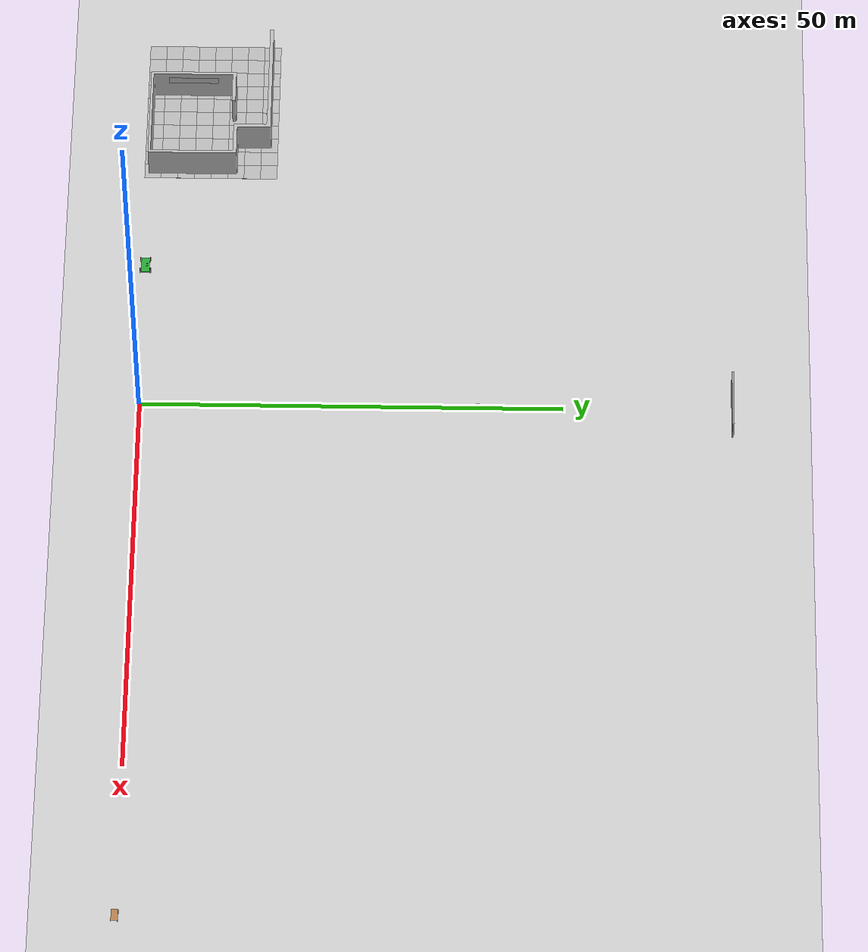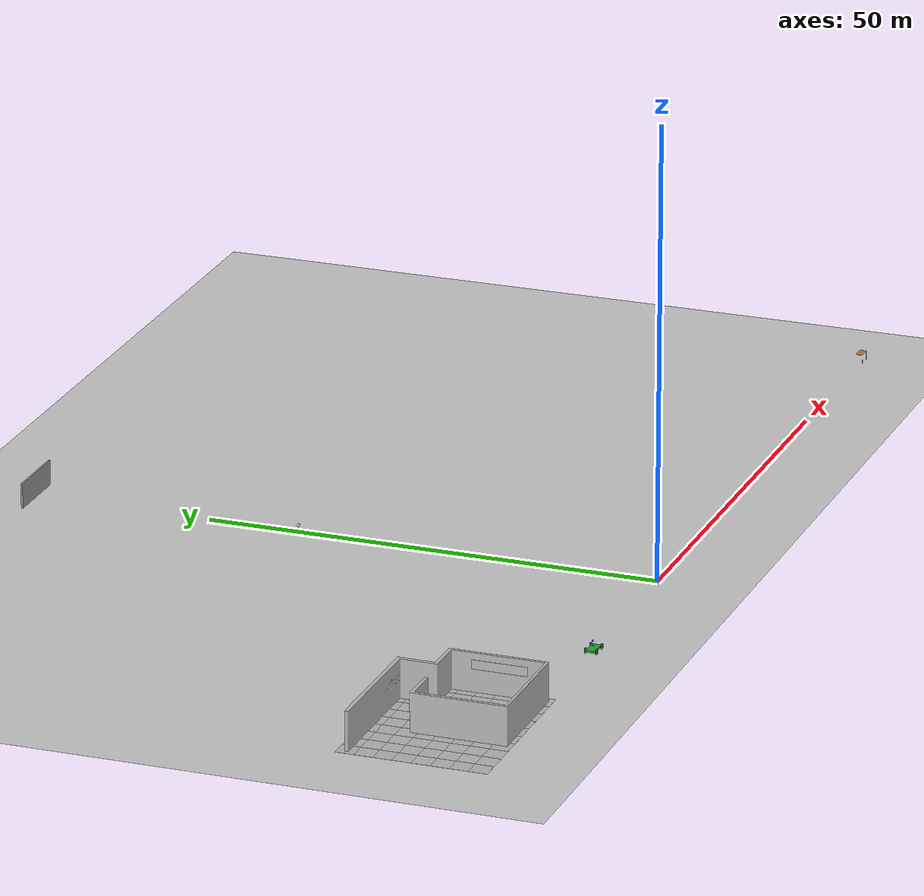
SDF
<sdf version="1.5">
 <world name="default">
  <include><uri>model://sun</uri></include>
  <include><uri>model://ground_plane</uri></include>
  <include><uri>model://table</uri><pose>70 0 0 0 0 0</pose></include>
  <include><uri>model://utility_cart</uri><pose>-20 0 0 0 0 0</pose></include>
  <include><uri>model://starting_pen</uri><pose>-40 0 0 0 0 0</pose></include>
  <include><uri>model://mailbox</uri><pose>0 40 0 0 0 0</pose></include>
  <include><uri>model://grey_wall</uri><pose>0 70 0 0 0 0</pose></include>
 </world>
</sdf>

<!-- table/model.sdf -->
<sdf version="1.5">
  <model name="table">
    <static>true</static>
    <link name="link">
      <collision name="surface">
        <pose>0 0 1.0 0 0 0</pose>
        <geometry>
          <box>
            <size>1.5 0.8 0.03</size>
          </box>
        </geometry>
        <surface>
          <friction>
            <ode>
              <mu>0.6</mu>
              <mu2>0.6</mu2>
            </ode>
          </friction>
        </surface>
      </collision>
      <visual name="visual1">
        <pose>0 0 1.0 0 0 0</pose>
        <geometry>
          <box>
            <size>1.5 0.8 0.03</size>
          </box>
        </geometry>
        <material>
          <script>
            <uri>model://media/materials/scripts/gazebo.material</uri>
            <name>Gazebo/Wood</name>
          </script>
        </material>
      </visual>
      <collision name="front_left_leg">
        <pose>0.68 0.38 0.5 0 0 0</pose>
        <geometry>
          <cylinder>
            <radius>0.02</radius>
            <length>1.0</length>
          </cylinder>
        </geometry>
      </collision>
      <visual name="front_left_leg">
        <pose>0.68 0.38 0.5 0 0 0</pose>
        <geometry>
          <cylinder>
            <radius>0.02</radius>
            <length>1.0</length>
          </cylinder>
        </geometry>
        <material>
          <script>
            <uri>model://media/materials/scripts/gazebo.material</uri>
            <name>Gazebo/Grey</name>
          </script>
        </material>
      </visual>
      <collision name="front_right_leg">
        <pose>0.68 -0.38 0.5 0 0 0</pose>
        <geometry>
          <cylinder>
            <radius>0.02</radius>
            <length>1.0</length>
          </cylinder>
        </geometry>
      </collision>
      <visual name="front_right_leg">
        <pose>0.68 -0.38 0.5 0 0 0</pose>
        <geometry>
          <cylinder>
            <radius>0.02</radius>
            <length>1.0</length>
          </cylinder>
        </geometry>
        <material>
          <script>
            <uri>model://media/materials/scripts/gazebo.material</uri>
            <name>Gazebo/Grey</name>
          </script>
        </material>
      </visual>
      <collision name="back_right_leg">
        <pose>-0.68 -0.38 0.5 0 0 0</pose>
        <geometry>
          <cylinder>
            <radius>0.02</radius>
            <length>1.0</length>
          </cylinder>
        </geometry>
      </collision>
      <visual name="back_right_leg">
        <pose>-0.68 -0.38 0.5 0 0 0</pose>
        <geometry>
          <cylinder>
            <radius>0.02</radius>
            <length>1.0</length>
          </cylinder>
        </geometry>
        <material>
          <script>
            <uri>model://media/materials/scripts/gazebo.material</uri>
            <name>Gazebo/Grey</name>
          </script>
        </material>
      </visual>
      <collision name="back_left_leg">
        <pose>-0.68 0.38 0.5 0 0 0</pose>
        <geometry>
          <cylinder>
            <radius>0.02</radius>
            <length>1.0</length>
          </cylinder>
        </geometry>
      </collision>
      <visual name="back_left_leg">
        <pose>-0.68 0.38 0.5 0 0 0</pose>
        <geometry>
          <cylinder>
            <radius>0.02</radius>
            <length>1.0</length>
          </cylinder>
        </geometry>
        <material>
          <script>
            <uri>model://media/materials/scripts/gazebo.material</uri>
            <name>Gazebo/Grey</name>
          </script>
        </material>
      </visual>
    </link>
  </model>
</sdf>

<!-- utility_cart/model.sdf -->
<sdf version="1.5">
  <model name="utility_cart">
    <link name="chassis">
      <pose>0 0 0.3 0 0 0</pose>
      <collision name="collision">
        <geometry>
          <box>
            <size>2.0 1.0 0.2</size>
          </box>
        </geometry>
      </collision>
      <visual name="visual">
        <geometry>
          <box>
            <size>2.0 1.0 0.2</size>
          </box>
        </geometry>
        <material>
          <script>
            <uri>file://media/materials/scripts/gazebo.material</uri>
            <name>Gazebo/Green</name>
          </script>
        </material>
      </visual>
    </link>
    <link name="front_left_wheel">
      <pose>0.8 0.6 0.3 0 1.5707 1.5707</pose>
      <collision name="collision">
        <geometry>
          <cylinder>
            <radius>0.3</radius>
            <length>0.1</length>
          </cylinder>
        </geometry>
      </collision>
      <visual name="visual">
        <geometry>
          <cylinder>
            <radius>0.3</radius>
            <length>0.1</length>
          </cylinder>
        </geometry>
        <material>
          <script>
            <uri>file://media/materials/scripts/gazebo.material</uri>
            <name>Gazebo/Black</name>
          </script>
        </material>
      </visual>
    </link>
    <link name="front_right_wheel">
      <pose>0.8 -0.6 0.3 0 1.5707 1.5707</pose>
      <collision name="collision">
        <geometry>
          <cylinder>
            <radius>0.3</radius>
            <length>0.1</length>
          </cylinder>
        </geometry>
      </collision>
      <visual name="visual">
        <geometry>
          <cylinder>
            <radius>0.3</radius>
            <length>0.1</length>
          </cylinder>
        </geometry>
        <material>
          <script>
            <uri>file://media/materials/scripts/gazebo.material</uri>
            <name>Gazebo/Black</name>
          </script>
        </material>
      </visual>
    </link>
    <link name="back_right_wheel">
      <pose>-0.8 -0.6 0.3 0 1.5707 1.5707</pose>
      <collision name="collision">
        <geometry>
          <cylinder>
            <radius>0.3</radius>
            <length>0.1</length>
          </cylinder>
        </geometry>
      </collision>
      <visual name="visual">
        <geometry>
          <cylinder>
            <radius>0.3</radius>
            <length>0.1</length>
          </cylinder>
        </geometry>
        <material>
          <script>
            <uri>file://media/materials/scripts/gazebo.material</uri>
            <name>Gazebo/Black</name>
          </script>
        </material>
      </visual>
    </link>
    <link name="back_left_wheel">
      <pose>-0.8 0.6 0.3 0 1.5707 1.5707</pose>
      <collision name="collision">
        <geometry>
          <cylinder>
            <radius>0.3</radius>
            <length>0.1</length>
          </cylinder>
        </geometry>
      </collision>
      <visual name="visual">
        <geometry>
          <cylinder>
            <radius>0.3</radius>
            <length>0.1</length>
          </cylinder>
        </geometry>
        <material>
          <script>
            <uri>file://media/materials/scripts/gazebo.material</uri>
            <name>Gazebo/Black</name>
          </script>
        </material>
      </visual>
    </link>
    <link name="gas_pedal">
      <pose>0.3 0.1 0.5 0 0 0</pose>
      <collision name="collision">
        <geometry>
          <box>
            <size>0.1 0.1 0.1</size>
          </box>
        </geometry>
      </collision>
      <visual name="visual">
        <geometry>
          <box>
            <size>0.1 0.1 0.1</size>
          </box>
        </geometry>
        <material>
          <script>
            <uri>file://media/materials/scripts/gazebo.material</uri>
            <name>Gazebo/Red</name>
          </script>
        </material>
      </visual>
    </link>
    <link name="brake_pedal">
      <pose>0.3 0.25 0.5 0 0 0</pose>
      <collision name="collision">
        <geometry>
          <box>
            <size>0.1 0.1 0.1</size>
          </box>
        </geometry>
      </collision>
      <visual name="visual">
        <geometry>
          <box>
            <size>0.1 0.1 0.1</size>
          </box>
        </geometry>
        <material>
          <script>
            <uri>file://media/materials/scripts/gazebo.material</uri>
            <name>Gazebo/Blue</name>
          </script>
        </material>
      </visual>
    </link>
    <link name="steering_wheel">
      <pose>0.3 0.2 1.0 0 1.5707 0</pose>
      <collision name="collision">
        <geometry>
          <cylinder>
            <radius>0.1</radius>
            <length>0.01</length>
          </cylinder>
        </geometry>
      </collision>
      <visual name="visual">
        <geometry>
          <cylinder>
            <radius>0.1</radius>
            <length>0.01</length>
          </cylinder>
        </geometry>
        <material>
          <script>
            <uri>file://media/materials/scripts/gazebo.material</uri>
            <name>Gazebo/Blue</name>
          </script>
        </material>
      </visual>
    </link>
    <joint type="prismatic" name="gas_joint">
      <parent>chassis</parent>
      <child>gas_pedal</child>
      <axis>
        <xyz>1 0 0</xyz>
        <limit>
          <lower>0</lower>
          <upper>0.2</upper>
        </limit>
        <use_parent_model_frame>true</use_parent_model_frame>
      </axis>
    </joint>
    <joint type="prismatic" name="brake_joint">
      <parent>chassis</parent>
      <child>brake_pedal</child>
      <axis>
        <xyz>1 0 0</xyz>
        <limit>
          <lower>0</lower>
          <upper>0.2</upper>
        </limit>
        <use_parent_model_frame>true</use_parent_model_frame>
      </axis>
    </joint>
    <joint type="revolute" name="steering_joint">
      <parent>chassis</parent>
      <child>steering_wheel</child>
      <axis>
        <xyz>1 0 0</xyz>
        <limit>
          <lower>-7.853</lower>
          <upper>7.853</upper>
        </limit>
        <use_parent_model_frame>true</use_parent_model_frame>
      </axis>
    </joint>
    <joint type="revolute2" name="front_left_joint">
      <parent>chassis</parent>
      <child>front_left_wheel</child>
      <axis>
        <xyz>0 0 1</xyz>
        <limit>
          <lower>0</lower>
          <upper>0</upper>
        </limit>
        <use_parent_model_frame>true</use_parent_model_frame>
      </axis>
      <axis2>
        <xyz>0 1 0</xyz>
        <use_parent_model_frame>true</use_parent_model_frame>
      </axis2>
      <physics>
        <ode>
          <limit>
            <cfm>0.0</cfm>
            <erp>0.9</erp>
          </limit>
        </ode>
      </physics>
    </joint>
    <joint type="revolute2" name="front_right_joint">
      <parent>chassis</parent>
      <child>front_right_wheel</child>
      <axis>
        <xyz>0 0 1</xyz>
        <limit>
          <lower>0</lower>
          <upper>0</upper>
        </limit>
        <use_parent_model_frame>true</use_parent_model_frame>
      </axis>
      <axis2>
        <xyz>0 1 0</xyz>
        <use_parent_model_frame>true</use_parent_model_frame>
      </axis2>
      <physics>
        <ode>
          <limit>
            <cfm>0.0</cfm>
            <erp>0.9</erp>
          </limit>
        </ode>
      </physics>
    </joint>
    <joint type="revolute2" name="back_right_joint">
      <parent>chassis</parent>
      <child>back_right_wheel</child>
      <axis>
        <xyz>0 0 1</xyz>
        <limit>
          <lower>0</lower>
          <upper>0</upper>
        </limit>
        <use_parent_model_frame>true</use_parent_model_frame>
      </axis>
      <axis2>
        <xyz>0 1 0</xyz>
        <use_parent_model_frame>true</use_parent_model_frame>
      </axis2>
      <physics>
        <ode>
          <limit>
            <cfm>0.0</cfm>
            <erp>0.9</erp>
          </limit>
        </ode>
      </physics>
    </joint>
    <joint type="revolute2" name="back_left_joint">
      <parent>chassis</parent>
      <child>back_left_wheel</child>
      <axis>
        <xyz>0 0 1</xyz>
        <limit>
          <lower>0</lower>
          <upper>0</upper>
        </limit>
        <use_parent_model_frame>true</use_parent_model_frame>
      </axis>
      <axis2>
        <xyz>0 1 0</xyz>
        <use_parent_model_frame>true</use_parent_model_frame>
      </axis2>
      <physics>
        <ode>
          <limit>
            <cfm>0.0</cfm>
            <erp>0.9</erp>
          </limit>
        </ode>
      </physics>
    </joint>
    <plugin filename="libVehiclePlugin.so" name="vehicle">
      <!-- Joints for each wheel -->
      <front_left>front_left_joint</front_left>
      <front_right>front_right_joint</front_right>
      <back_left>back_left_joint</back_left>
      <back_right>back_right_joint</back_right>
      <!-- Joint which controls the gas -->
      <gas>gas_joint</gas>
      <!-- Joint which controls the gas -->
      <brake>brake_joint</brake>
      <!-- Joint which controls the steering -->
      <steering>steering_joint</steering>
      <!-- Power is multiplied by "gas" to determine force applied to wheels -->
      <front_power>10</front_power>
      <rear_power>10</rear_power>
      <!-- The angle range the front tires can turn for steering, in radians -->
      <tire_angle_range>0.5</tire_angle_range>
      <!-- Maximum speed for the car in meters/second -->
      <max_speed>10</max_speed>
      <!-- Factor for the down-force applied as the car travels faster -->
      <!-- A larger number increases the down force -->
      <aero_load>0.1</aero_load>
    </plugin>
  </model>
</sdf>

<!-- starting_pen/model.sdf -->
<sdf version="1.5">
  <model name="starting_pen">
    <static>true</static>
    <link name="link">
      <collision name="wall_01">
        <pose>-0.0 0 2.14 0 0 0</pose>
        <geometry>
          <box>
            <size>12.15 0.31 4.28</size>
          </box>
        </geometry>
      </collision>
      <collision name="wall_02">
        <pose>-5.28 14.3205 2.14 0 0 0</pose>
        <geometry>
          <box>
            <size>14.8 0.46 4.28</size>
          </box>
        </geometry>
      </collision>
      <collision name="wall_03">
        <pose>-5.91 5.0 2.14 0 0 0</pose>
        <geometry>
          <box>
            <size>0.385 10.3 4.28</size>
          </box>
        </geometry>
      </collision>
      <collision name="wall_04">
        <pose>5.91 5.161 2.14 0 0 0</pose>
        <geometry>
          <box>
            <size>0.385 10.66 4.28</size>
          </box>
        </geometry>
      </collision>
      <collision name="wall_05">
        <pose>3.9 10.285 2.14 0 0 0</pose>
        <geometry>
          <box>
            <size>4.38 0.45 4.28</size>
          </box>
        </geometry>
      </collision>
      <collision name="wall_06">
        <pose>-4.0 9.95 2.14 0 0 0</pose>
        <geometry>
          <box>
            <size>4.25 0.45 4.28</size>
          </box>
        </geometry>
      </collision>
      <collision name="wall_07">
        <pose>1.94 12.3 2.14 0 0 0</pose>
        <geometry>
          <box>
            <size>0.45 4.5 4.28</size>
          </box>
        </geometry>
      </collision>
      <collision name="wall_arrow">
        <pose>-0.232 14.03 2.46 0 0 0</pose>
        <geometry>
          <box>
            <size>3.33 0.12 1.16</size>
          </box>
        </geometry>
      </collision>
      <collision name="collision_floor">
        <pose>-3.21 7.355 0 0 0 0</pose>
        <geometry>
          <box>
            <size>20 16 0.01</size>
          </box>
        </geometry>
        <surface>
          <friction>
            <ode>
              <mu>100</mu>
              <mu2>50</mu2>
            </ode>
          </friction>
        </surface>
      </collision>
      <visual name="visual_osrf">
        <pose>-5.74 4.99 3 0 0 0</pose>
        <geometry>
          <box>
            <size>0.01 6 1.0</size>
          </box>
        </geometry>
        <material>
          <script>
            <uri>model://starting_pen/materials/scripts</uri>
            <uri>model://starting_pen/materials/textures</uri>
            <name>StartingPen/OSRF</name>
          </script>
        </material>
      </visual>
      <visual name="visual_osrf_2">
        <pose>5.74 4.99 3 0 0 0</pose>
        <geometry>
          <box>
            <size>0.01 6 1.0</size>
          </box>
        </geometry>
        <material>
          <script>
            <uri>model://starting_pen/materials/scripts</uri>
            <uri>model://starting_pen/materials/textures</uri>
            <name>StartingPen/OSRF</name>
          </script>
        </material>
      </visual>
      <visual name="visual">
        <geometry>
          <mesh>
            <uri>model://starting_pen/meshes/starting_pen.dae</uri>
          </mesh>
        </geometry>
      </visual>
      <visual name="visual_floor_0">
        <pose>-12.21 0.35 0 0 0 0</pose>
        <geometry>
          <box>
            <size>2 2 0.01</size>
          </box>
        </geometry>
        <material>
          <script>
            <uri>model://starting_pen/materials/scripts</uri>
            <uri>model://starting_pen/materials/textures</uri>
            <name>StartingPen/Floor</name>
          </script>
        </material>
      </visual>
      <visual name="visual_floor_1">
        <pose>-10.21 0.35 0 0 0 0</pose>
        <geometry>
          <box>
            <size>2 2 0.01</size>
          </box>
        </geometry>
        <material>
          <script>
            <uri>model://starting_pen/materials/scripts</uri>
            <uri>model://starting_pen/materials/textures</uri>
            <name>StartingPen/Floor</name>
          </script>
        </material>
      </visual>
      <visual name="visual_floor_2">
        <pose>-8.21 0.35 0 0 0 0</pose>
        <geometry>
          <box>
            <size>2 2 0.01</size>
          </box>
        </geometry>
        <material>
          <script>
            <uri>model://starting_pen/materials/scripts</uri>
            <uri>model://starting_pen/materials/textures</uri>
            <name>StartingPen/Floor</name>
          </script>
        </material>
      </visual>
      <visual name="visual_floor_3">
        <pose>-6.21 0.35 0 0 0 0</pose>
        <geometry>
          <box>
            <size>2 2 0.01</size>
          </box>
        </geometry>
        <material>
          <script>
            <uri>model://starting_pen/materials/scripts</uri>
            <uri>model://starting_pen/materials/textures</uri>
            <name>StartingPen/Floor</name>
          </script>
        </material>
      </visual>
      <visual name="visual_floor_4">
        <pose>-4.21 0.35 0 0 0 0</pose>
        <geometry>
          <box>
            <size>2 2 0.01</size>
          </box>
        </geometry>
        <material>
          <script>
            <uri>model://starting_pen/materials/scripts</uri>
            <uri>model://starting_pen/materials/textures</uri>
            <name>StartingPen/Floor</name>
          </script>
        </material>
      </visual>
      <visual name="visual_floor_5">
        <pose>-2.21 0.35 0 0 0 0</pose>
        <geometry>
          <box>
            <size>2 2 0.01</size>
          </box>
        </geometry>
        <material>
          <script>
            <uri>model://starting_pen/materials/scripts</uri>
            <uri>model://starting_pen/materials/textures</uri>
            <name>StartingPen/Floor</name>
          </script>
        </material>
      </visual>
      <visual name="visual_floor_6">
        <pose>-0.21 0.35 0 0 0 0</pose>
        <geometry>
          <box>
            <size>2 2 0.01</size>
          </box>
        </geometry>
        <material>
          <script>
            <uri>model://starting_pen/materials/scripts</uri>
            <uri>model://starting_pen/materials/textures</uri>
            <name>StartingPen/Floor</name>
          </script>
        </material>
      </visual>
      <visual name="visual_floor_7">
        <pose>1.79 0.35 0 0 0 1.5707</pose>
        <geometry>
          <box>
            <size>2 2 0.01</size>
          </box>
        </geometry>
        <material>
          <script>
            <uri>model://starting_pen/materials/scripts</uri>
            <uri>model://starting_pen/materials/textures</uri>
            <name>StartingPen/FloorStripped</name>
          </script>
        </material>
      </visual>
      <visual name="visual_floor_8">
        <pose>3.79 0.35 0 0 0 0</pose>
        <geometry>
          <box>
            <size>2 2 0.01</size>
          </box>
        </geometry>
        <material>
          <script>
            <uri>model://starting_pen/materials/scripts</uri>
            <uri>model://starting_pen/materials/textures</uri>
            <name>StartingPen/Floor</name>
          </script>
        </material>
      </visual>
      <visual name="visual_floor_9">
        <pose>5.79 0.35 0 0 0 0</pose>
        <geometry>
          <box>
            <size>2 2 0.01</size>
          </box>
        </geometry>
        <material>
          <script>
            <uri>model://starting_pen/materials/scripts</uri>
            <uri>model://starting_pen/materials/textures</uri>
            <name>StartingPen/Floor</name>
          </script>
        </material>
      </visual>
      <visual name="visual_floor_10">
        <pose>-12.21 2.35 0 0 0 1.5707</pose>
        <geometry>
          <box>
            <size>2 2 0.01</size>
          </box>
        </geometry>
        <material>
          <script>
            <uri>model://starting_pen/materials/scripts</uri>
            <uri>model://starting_pen/materials/textures</uri>
            <name>StartingPen/FloorStripped</name>
          </script>
        </material>
      </visual>
      <visual name="visual_floor_11">
        <pose>-10.21 2.35 0 0 0 0</pose>
        <geometry>
          <box>
            <size>2 2 0.01</size>
          </box>
        </geometry>
        <material>
          <script>
            <uri>model://starting_pen/materials/scripts</uri>
            <uri>model://starting_pen/materials/textures</uri>
            <name>StartingPen/Floor</name>
          </script>
        </material>
      </visual>
      <visual name="visual_floor_12">
        <pose>-8.21 2.35 0 0 0 0</pose>
        <geometry>
          <box>
            <size>2 2 0.01</size>
          </box>
        </geometry>
        <material>
          <script>
            <uri>model://starting_pen/materials/scripts</uri>
            <uri>model://starting_pen/materials/textures</uri>
            <name>StartingPen/Floor</name>
          </script>
        </material>
      </visual>
      <visual name="visual_floor_13">
        <pose>-6.21 2.35 0 0 0 0</pose>
        <geometry>
          <box>
            <size>2 2 0.01</size>
          </box>
        </geometry>
        <material>
          <script>
            <uri>model://starting_pen/materials/scripts</uri>
            <uri>model://starting_pen/materials/textures</uri>
            <name>StartingPen/Floor</name>
          </script>
        </material>
      </visual>
      <visual name="visual_floor_14">
        <pose>-4.21 2.35 0 0 0 0</pose>
        <geometry>
          <box>
            <size>2 2 0.01</size>
          </box>
        </geometry>
        <material>
          <script>
            <uri>model://starting_pen/materials/scripts</uri>
            <uri>model://starting_pen/materials/textures</uri>
            <name>StartingPen/Floor</name>
          </script>
        </material>
      </visual>
      <visual name="visual_floor_15">
        <pose>-2.21 2.35 0 0 0 0</pose>
        <geometry>
          <box>
            <size>2 2 0.01</size>
          </box>
        </geometry>
        <material>
          <script>
            <uri>model://starting_pen/materials/scripts</uri>
            <uri>model://starting_pen/materials/textures</uri>
            <name>StartingPen/Floor</name>
          </script>
        </material>
      </visual>
      <visual name="visual_floor_16">
        <pose>-0.21 2.35 0 0 0 1.5707</pose>
        <geometry>
          <box>
            <size>2 2 0.01</size>
          </box>
        </geometry>
        <material>
          <script>
            <uri>model://starting_pen/materials/scripts</uri>
            <uri>model://starting_pen/materials/textures</uri>
            <name>StartingPen/FloorStripped</name>
          </script>
        </material>
      </visual>
      <visual name="visual_floor_17">
        <pose>1.79 2.35 0 0 0 1.5707</pose>
        <geometry>
          <box>
            <size>2 2 0.01</size>
          </box>
        </geometry>
        <material>
          <script>
            <uri>model://starting_pen/materials/scripts</uri>
            <uri>model://starting_pen/materials/textures</uri>
            <name>StartingPen/Floor</name>
          </script>
        </material>
      </visual>
      <visual name="visual_floor_18">
        <pose>3.79 2.35 0 0 0 0</pose>
        <geometry>
          <box>
            <size>2 2 0.01</size>
          </box>
        </geometry>
        <material>
          <script>
            <uri>model://starting_pen/materials/scripts</uri>
            <uri>model://starting_pen/materials/textures</uri>
            <name>StartingPen/Floor</name>
          </script>
        </material>
      </visual>
      <visual name="visual_floor_19">
        <pose>5.79 2.35 0 0 0 0</pose>
        <geometry>
          <box>
            <size>2 2 0.01</size>
          </box>
        </geometry>
        <material>
          <script>
            <uri>model://starting_pen/materials/scripts</uri>
            <uri>model://starting_pen/materials/textures</uri>
            <name>StartingPen/Floor</name>
          </script>
        </material>
      </visual>
      <visual name="visual_floor_20">
        <pose>-12.21 4.35 0 0 0 0</pose>
        <geometry>
          <box>
            <size>2 2 0.01</size>
          </box>
        </geometry>
        <material>
          <script>
            <uri>model://starting_pen/materials/scripts</uri>
            <uri>model://starting_pen/materials/textures</uri>
            <name>StartingPen/Floor</name>
          </script>
        </material>
      </visual>
      <visual name="visual_floor_21">
        <pose>-10.21 4.35 0 0 0 0</pose>
        <geometry>
          <box>
            <size>2 2 0.01</size>
          </box>
        </geometry>
        <material>
          <script>
            <uri>model://starting_pen/materials/scripts</uri>
            <uri>model://starting_pen/materials/textures</uri>
            <name>StartingPen/Floor</name>
          </script>
        </material>
      </visual>
      <visual name="visual_floor_22">
        <pose>-8.21 4.35 0 0 0 1.5707</pose>
        <geometry>
          <box>
            <size>2 2 0.01</size>
          </box>
        </geometry>
        <material>
          <script>
            <uri>model://starting_pen/materials/scripts</uri>
            <uri>model://starting_pen/materials/textures</uri>
            <name>StartingPen/FloorStripped</name>
          </script>
        </material>
      </visual>
      <visual name="visual_floor_23">
        <pose>-6.21 4.35 0 0 0 0</pose>
        <geometry>
          <box>
            <size>2 2 0.01</size>
          </box>
        </geometry>
        <material>
          <script>
            <uri>model://starting_pen/materials/scripts</uri>
            <uri>model://starting_pen/materials/textures</uri>
            <name>StartingPen/Floor</name>
          </script>
        </material>
      </visual>
      <visual name="visual_floor_24">
        <pose>-4.21 4.35 0 0 0 0</pose>
        <geometry>
          <box>
            <size>2 2 0.01</size>
          </box>
        </geometry>
        <material>
          <script>
            <uri>model://starting_pen/materials/scripts</uri>
            <uri>model://starting_pen/materials/textures</uri>
            <name>StartingPen/Floor</name>
          </script>
        </material>
      </visual>
      <visual name="visual_floor_25">
        <pose>-2.21 4.35 0 0 0 0</pose>
        <geometry>
          <box>
            <size>2 2 0.01</size>
          </box>
        </geometry>
        <material>
          <script>
            <uri>model://starting_pen/materials/scripts</uri>
            <uri>model://starting_pen/materials/textures</uri>
            <name>StartingPen/Floor</name>
          </script>
        </material>
      </visual>
      <visual name="visual_floor_26">
        <pose>-0.21 4.35 0 0 0 0</pose>
        <geometry>
          <box>
            <size>2 2 0.01</size>
          </box>
        </geometry>
        <material>
          <script>
            <uri>model://starting_pen/materials/scripts</uri>
            <uri>model://starting_pen/materials/textures</uri>
            <name>StartingPen/Floor</name>
          </script>
        </material>
      </visual>
      <visual name="visual_floor_27">
        <pose>1.79 4.35 0 0 0 0</pose>
        <geometry>
          <box>
            <size>2 2 0.01</size>
          </box>
        </geometry>
        <material>
          <script>
            <uri>model://starting_pen/materials/scripts</uri>
            <uri>model://starting_pen/materials/textures</uri>
            <name>StartingPen/Floor</name>
          </script>
        </material>
      </visual>
      <visual name="visual_floor_28">
        <pose>3.79 4.35 0 0 0 0</pose>
        <geometry>
          <box>
            <size>2 2 0.01</size>
          </box>
        </geometry>
        <material>
          <script>
            <uri>model://starting_pen/materials/scripts</uri>
            <uri>model://starting_pen/materials/textures</uri>
            <name>StartingPen/Floor</name>
          </script>
        </material>
      </visual>
      <visual name="visual_floor_29">
        <pose>5.79 4.35 0 0 0 1.5707</pose>
        <geometry>
          <box>
            <size>2 2 0.01</size>
          </box>
        </geometry>
        <material>
          <script>
            <uri>model://starting_pen/materials/scripts</uri>
            <uri>model://starting_pen/materials/textures</uri>
            <name>StartingPen/FloorStripped</name>
          </script>
        </material>
      </visual>
      <visual name="visual_floor_30">
        <pose>-12.21 6.35 0 0 0 0</pose>
        <geometry>
          <box>
            <size>2 2 0.01</size>
          </box>
        </geometry>
        <material>
          <script>
            <uri>model://starting_pen/materials/scripts</uri>
            <uri>model://starting_pen/materials/textures</uri>
            <name>StartingPen/Floor</name>
          </script>
        </material>
      </visual>
      <visual name="visual_floor_31">
        <pose>-10.21 6.35 0 0 0 0</pose>
        <geometry>
          <box>
            <size>2 2 0.01</size>
          </box>
        </geometry>
        <material>
          <script>
            <uri>model://starting_pen/materials/scripts</uri>
            <uri>model://starting_pen/materials/textures</uri>
            <name>StartingPen/Floor</name>
          </script>
        </material>
      </visual>
      <visual name="visual_floor_32">
        <pose>-8.21 6.35 0 0 0 0</pose>
        <geometry>
          <box>
            <size>2 2 0.01</size>
          </box>
        </geometry>
        <material>
          <script>
            <uri>model://starting_pen/materials/scripts</uri>
            <uri>model://starting_pen/materials/textures</uri>
            <name>StartingPen/Floor</name>
          </script>
        </material>
      </visual>
      <visual name="visual_floor_33">
        <pose>-6.21 6.35 0 0 0 1.5707</pose>
        <geometry>
          <box>
            <size>2 2 0.01</size>
          </box>
        </geometry>
        <material>
          <script>
            <uri>model://starting_pen/materials/scripts</uri>
            <uri>model://starting_pen/materials/textures</uri>
            <name>StartingPen/FloorStripped</name>
          </script>
        </material>
      </visual>
      <visual name="visual_floor_34">
        <pose>-4.21 6.35 0 0 0 0</pose>
        <geometry>
          <box>
            <size>2 2 0.01</size>
          </box>
        </geometry>
        <material>
          <script>
            <uri>model://starting_pen/materials/scripts</uri>
            <uri>model://starting_pen/materials/textures</uri>
            <name>StartingPen/Floor</name>
          </script>
        </material>
      </visual>
      <visual name="visual_floor_35">
        <pose>-2.21 6.35 0 0 0 1.5707</pose>
        <geometry>
          <box>
            <size>2 2 0.01</size>
          </box>
        </geometry>
        <material>
          <script>
            <uri>model://starting_pen/materials/scripts</uri>
            <uri>model://starting_pen/materials/textures</uri>
            <name>StartingPen/FloorStripped</name>
          </script>
        </material>
      </visual>
      <visual name="visual_floor_36">
        <pose>-0.21 6.35 0 0 0 0</pose>
        <geometry>
          <box>
            <size>2 2 0.01</size>
          </box>
        </geometry>
        <material>
          <script>
            <uri>model://starting_pen/materials/scripts</uri>
            <uri>model://starting_pen/materials/textures</uri>
            <name>StartingPen/Floor</name>
          </script>
        </material>
      </visual>
      <visual name="visual_floor_37">
        <pose>1.79 6.35 0 0 0 0</pose>
        <geometry>
          <box>
            <size>2 2 0.01</size>
          </box>
        </geometry>
        <material>
          <script>
            <uri>model://starting_pen/materials/scripts</uri>
            <uri>model://starting_pen/materials/textures</uri>
            <name>StartingPen/Floor</name>
          </script>
        </material>
      </visual>
      <visual name="visual_floor_38">
        <pose>3.79 6.35 0 0 0 0</pose>
        <geometry>
          <box>
            <size>2 2 0.01</size>
          </box>
        </geometry>
        <material>
          <script>
            <uri>model://starting_pen/materials/scripts</uri>
            <uri>model://starting_pen/materials/textures</uri>
            <name>StartingPen/Floor</name>
          </script>
        </material>
      </visual>
      <visual name="visual_floor_39">
        <pose>5.79 6.35 0 0 0 0</pose>
        <geometry>
          <box>
            <size>2 2 0.01</size>
          </box>
        </geometry>
        <material>
          <script>
            <uri>model://starting_pen/materials/scripts</uri>
            <uri>model://starting_pen/materials/textures</uri>
            <name>StartingPen/Floor</name>
          </script>
        </material>
      </visual>
      <visual name="visual_floor_40">
        <pose>-12.21 8.35 0 0 0 0</pose>
        <geometry>
          <box>
            <size>2 2 0.01</size>
          </box>
        </geometry>
        <material>
          <script>
            <uri>model://starting_pen/materials/scripts</uri>
            <uri>model://starting_pen/materials/textures</uri>
            <name>StartingPen/Floor</name>
          </script>
        </material>
      </visual>
      <visual name="visual_floor_41">
        <pose>-10.21 8.35 0 0 0 0</pose>
        <geometry>
          <box>
            <size>2 2 0.01</size>
          </box>
        </geometry>
        <material>
          <script>
            <uri>model://starting_pen/materials/scripts</uri>
            <uri>model://starting_pen/materials/textures</uri>
            <name>StartingPen/Floor</name>
          </script>
        </material>
      </visual>
      <visual name="visual_floor_42">
        <pose>-8.21 8.35 0 0 0 1.5707</pose>
        <geometry>
          <box>
            <size>2 2 0.01</size>
          </box>
        </geometry>
        <material>
          <script>
            <uri>model://starting_pen/materials/scripts</uri>
            <uri>model://starting_pen/materials/textures</uri>
            <name>StartingPen/FloorStripped</name>
          </script>
        </material>
      </visual>
      <visual name="visual_floor_43">
        <pose>-6.21 8.35 0 0 0 0</pose>
        <geometry>
          <box>
            <size>2 2 0.01</size>
          </box>
        </geometry>
        <material>
          <script>
            <uri>model://starting_pen/materials/scripts</uri>
            <uri>model://starting_pen/materials/textures</uri>
            <name>StartingPen/Floor</name>
          </script>
        </material>
      </visual>
      <visual name="visual_floor_44">
        <pose>-4.21 8.35 0 0 0 0</pose>
        <geometry>
          <box>
            <size>2 2 0.01</size>
          </box>
        </geometry>
        <material>
          <script>
            <uri>model://starting_pen/materials/scripts</uri>
            <uri>model://starting_pen/materials/textures</uri>
            <name>StartingPen/Floor</name>
          </script>
        </material>
      </visual>
      <visual name="visual_floor_45">
        <pose>-2.21 8.35 0 0 0 0</pose>
        <geometry>
          <box>
            <size>2 2 0.01</size>
          </box>
        </geometry>
        <material>
          <script>
            <uri>model://starting_pen/materials/scripts</uri>
            <uri>model://starting_pen/materials/textures</uri>
            <name>StartingPen/Floor</name>
          </script>
        </material>
      </visual>
      <visual name="visual_floor_46">
        <pose>-0.21 8.35 0 0 0 1.5707</pose>
        <geometry>
          <box>
            <size>2 2 0.01</size>
          </box>
        </geometry>
        <material>
          <script>
            <uri>model://starting_pen/materials/scripts</uri>
            <uri>model://starting_pen/materials/textures</uri>
            <name>StartingPen/FloorStripped</name>
          </script>
        </material>
      </visual>
      <visual name="visual_floor_47">
        <pose>1.79 8.35 0 0 0 0</pose>
        <geometry>
          <box>
            <size>2 2 0.01</size>
          </box>
        </geometry>
        <material>
          <script>
            <uri>model://starting_pen/materials/scripts</uri>
            <uri>model://starting_pen/materials/textures</uri>
            <name>StartingPen/Floor</name>
          </script>
        </material>
      </visual>
      <visual name="visual_floor_48">
        <pose>3.79 8.35 0 0 0 0</pose>
        <geometry>
          <box>
            <size>2 2 0.01</size>
          </box>
        </geometry>
        <material>
          <script>
            <uri>model://starting_pen/materials/scripts</uri>
            <uri>model://starting_pen/materials/textures</uri>
            <name>StartingPen/Floor</name>
          </script>
        </material>
      </visual>
      <visual name="visual_floor_49">
        <pose>5.79 8.35 0 0 0 0</pose>
        <geometry>
          <box>
            <size>2 2 0.01</size>
          </box>
        </geometry>
        <material>
          <script>
            <uri>model://starting_pen/materials/scripts</uri>
            <uri>model://starting_pen/materials/textures</uri>
            <name>StartingPen/Floor</name>
          </script>
        </material>
      </visual>
      <visual name="visual_floor_50">
        <pose>-12.21 10.35 0 0 0 0</pose>
        <geometry>
          <box>
            <size>2 2 0.01</size>
          </box>
        </geometry>
        <material>
          <script>
            <uri>model://starting_pen/materials/scripts</uri>
            <uri>model://starting_pen/materials/textures</uri>
            <name>StartingPen/Floor</name>
          </script>
        </material>
      </visual>
      <visual name="visual_floor_51">
        <pose>-10.21 10.35 0 0 0 0</pose>
        <geometry>
          <box>
            <size>2 2 0.01</size>
          </box>
        </geometry>
        <material>
          <script>
            <uri>model://starting_pen/materials/scripts</uri>
            <uri>model://starting_pen/materials/textures</uri>
            <name>StartingPen/Floor</name>
          </script>
        </material>
      </visual>
      <visual name="visual_floor_52">
        <pose>-8.21 10.35 0 0 0 0</pose>
        <geometry>
          <box>
            <size>2 2 0.01</size>
          </box>
        </geometry>
        <material>
          <script>
            <uri>model://starting_pen/materials/scripts</uri>
            <uri>model://starting_pen/materials/textures</uri>
            <name>StartingPen/Floor</name>
          </script>
        </material>
      </visual>
      <visual name="visual_floor_53">
        <pose>-6.21 10.35 0 0 0 1.5707</pose>
        <geometry>
          <box>
            <size>2 2 0.01</size>
          </box>
        </geometry>
        <material>
          <script>
            <uri>model://starting_pen/materials/scripts</uri>
            <uri>model://starting_pen/materials/textures</uri>
            <name>StartingPen/FloorStripped</name>
          </script>
        </material>
      </visual>
      <visual name="visual_floor_54">
        <pose>-4.21 10.35 0 0 0 0</pose>
        <geometry>
          <box>
            <size>2 2 0.01</size>
          </box>
        </geometry>
        <material>
          <script>
            <uri>model://starting_pen/materials/scripts</uri>
            <uri>model://starting_pen/materials/textures</uri>
            <name>StartingPen/Floor</name>
          </script>
        </material>
      </visual>
      <visual name="visual_floor_55">
        <pose>-2.21 10.35 0 0 0 0</pose>
        <geometry>
          <box>
            <size>2 2 0.01</size>
          </box>
        </geometry>
        <material>
          <script>
            <uri>model://starting_pen/materials/scripts</uri>
            <uri>model://starting_pen/materials/textures</uri>
            <name>StartingPen/Floor</name>
          </script>
        </material>
      </visual>
      <visual name="visual_floor_56">
        <pose>-0.21 10.35 0 0 0 0</pose>
        <geometry>
          <box>
            <size>2 2 0.01</size>
          </box>
        </geometry>
        <material>
          <script>
            <uri>model://starting_pen/materials/scripts</uri>
            <uri>model://starting_pen/materials/textures</uri>
            <name>StartingPen/Floor</name>
          </script>
        </material>
      </visual>
      <visual name="visual_floor_57">
        <pose>1.79 10.35 0 0 0 0</pose>
        <geometry>
          <box>
            <size>2 2 0.01</size>
          </box>
        </geometry>
        <material>
          <script>
            <uri>model://starting_pen/materials/scripts</uri>
            <uri>model://starting_pen/materials/textures</uri>
            <name>StartingPen/Floor</name>
          </script>
        </material>
      </visual>
      <visual name="visual_floor_58">
        <pose>3.79 10.35 0 0 0 0</pose>
        <geometry>
          <box>
            <size>2 2 0.01</size>
          </box>
        </geometry>
        <material>
          <script>
            <uri>model://starting_pen/materials/scripts</uri>
            <uri>model://starting_pen/materials/textures</uri>
            <name>StartingPen/Floor</name>
          </script>
        </material>
      </visual>
      <visual name="visual_floor_59">
        <pose>5.79 10.35 0 0 0 0</pose>
        <geometry>
          <box>
            <size>2 2 0.01</size>
          </box>
        </geometry>
        <material>
          <script>
            <uri>model://starting_pen/materials/scripts</uri>
            <uri>model://starting_pen/materials/textures</uri>
            <name>StartingPen/Floor</name>
          </script>
        </material>
      </visual>
      <visual name="visual_floor_60">
        <pose>-12.21 12.35 0 0 0 1.5707</pose>
        <geometry>
          <box>
            <size>2 2 0.01</size>
          </box>
        </geometry>
        <material>
          <script>
            <uri>model://starting_pen/materials/scripts</uri>
            <uri>model://starting_pen/materials/textures</uri>
            <name>StartingPen/FloorStripped</name>
          </script>
        </material>
      </visual>
      <visual name="visual_floor_61">
        <pose>-10.21 12.35 0 0 0 0</pose>
        <geometry>
          <box>
            <size>2 2 0.01</size>
          </box>
        </geometry>
        <material>
          <script>
            <uri>model://starting_pen/materials/scripts</uri>
            <uri>model://starting_pen/materials/textures</uri>
            <name>StartingPen/Floor</name>
          </script>
        </material>
      </visual>
      <visual name="visual_floor_62">
        <pose>-8.21 12.35 0 0 0 0</pose>
        <geometry>
          <box>
            <size>2 2 0.01</size>
          </box>
        </geometry>
        <material>
          <script>
            <uri>model://starting_pen/materials/scripts</uri>
            <uri>model://starting_pen/materials/textures</uri>
            <name>StartingPen/Floor</name>
          </script>
        </material>
      </visual>
      <visual name="visual_floor_63">
        <pose>-6.21 12.35 0 0 0 0</pose>
        <geometry>
          <box>
            <size>2 2 0.01</size>
          </box>
        </geometry>
        <material>
          <script>
            <uri>model://starting_pen/materials/scripts</uri>
            <uri>model://starting_pen/materials/textures</uri>
            <name>StartingPen/Floor</name>
          </script>
        </material>
      </visual>
      <visual name="visual_floor_64">
        <pose>-4.21 12.35 0 0 0 0</pose>
        <geometry>
          <box>
            <size>2 2 0.01</size>
          </box>
        </geometry>
        <material>
          <script>
            <uri>model://starting_pen/materials/scripts</uri>
            <uri>model://starting_pen/materials/textures</uri>
            <name>StartingPen/Floor</name>
          </script>
        </material>
      </visual>
      <visual name="visual_floor_65">
        <pose>-2.21 12.35 0 0 0 1.5707</pose>
        <geometry>
          <box>
            <size>2 2 0.01</size>
          </box>
        </geometry>
        <material>
          <script>
            <uri>model://starting_pen/materials/scripts</uri>
            <uri>model://starting_pen/materials/textures</uri>
            <name>StartingPen/FloorStripped</name>
          </script>
        </material>
      </visual>
      <visual name="visual_floor_66">
        <pose>-0.21 12.35 0 0 0 0</pose>
        <geometry>
          <box>
            <size>2 2 0.01</size>
          </box>
        </geometry>
        <material>
          <script>
            <uri>model://starting_pen/materials/scripts</uri>
            <uri>model://starting_pen/materials/textures</uri>
            <name>StartingPen/Floor</name>
          </script>
        </material>
      </visual>
      <visual name="visual_floor_67">
        <pose>1.79 12.35 0 0 0 0</pose>
        <geometry>
          <box>
            <size>2 2 0.01</size>
          </box>
        </geometry>
        <material>
          <script>
            <uri>model://starting_pen/materials/scripts</uri>
            <uri>model://starting_pen/materials/textures</uri>
            <name>StartingPen/Floor</name>
          </script>
        </material>
      </visual>
      <visual name="visual_floor_68">
        <pose>3.79 12.35 0 0 0 0</pose>
        <geometry>
          <box>
            <size>2 2 0.01</size>
          </box>
        </geometry>
        <material>
          <script>
            <uri>model://starting_pen/materials/scripts</uri>
            <uri>model://starting_pen/materials/textures</uri>
            <name>StartingPen/Floor</name>
          </script>
        </material>
      </visual>
      <visual name="visual_floor_69">
        <pose>5.79 12.35 0 0 0 0</pose>
        <geometry>
          <box>
            <size>2 2 0.01</size>
          </box>
        </geometry>
        <material>
          <script>
            <uri>model://starting_pen/materials/scripts</uri>
            <uri>model://starting_pen/materials/textures</uri>
            <name>StartingPen/Floor</name>
          </script>
        </material>
      </visual>
      <visual name="visual_floor_70">
        <pose>-12.21 14.35 0 0 0 0</pose>
        <geometry>
          <box>
            <size>2 2 0.01</size>
          </box>
        </geometry>
        <material>
          <script>
            <uri>model://starting_pen/materials/scripts</uri>
            <uri>model://starting_pen/materials/textures</uri>
            <name>StartingPen/Floor</name>
          </script>
        </material>
      </visual>
      <visual name="visual_floor_71">
        <pose>-10.21 14.35 0 0 0 0</pose>
        <geometry>
          <box>
            <size>2 2 0.01</size>
          </box>
        </geometry>
        <material>
          <script>
            <uri>model://starting_pen/materials/scripts</uri>
            <uri>model://starting_pen/materials/textures</uri>
            <name>StartingPen/Floor</name>
          </script>
        </material>
      </visual>
      <visual name="visual_floor_72">
        <pose>-8.21 14.35 0 0 0 0</pose>
        <geometry>
          <box>
            <size>2 2 0.01</size>
          </box>
        </geometry>
        <material>
          <script>
            <uri>model://starting_pen/materials/scripts</uri>
            <uri>model://starting_pen/materials/textures</uri>
            <name>StartingPen/Floor</name>
          </script>
        </material>
      </visual>
      <visual name="visual_floor_73">
        <pose>-6.21 14.35 0 0 0 0</pose>
        <geometry>
          <box>
            <size>2 2 0.01</size>
          </box>
        </geometry>
        <material>
          <script>
            <uri>model://starting_pen/materials/scripts</uri>
            <uri>model://starting_pen/materials/textures</uri>
            <name>StartingPen/Floor</name>
          </script>
        </material>
      </visual>
      <visual name="visual_floor_74">
        <pose>-4.21 14.35 0 0 0 1.5707</pose>
        <geometry>
          <box>
            <size>2 2 0.01</size>
          </box>
        </geometry>
        <material>
          <script>
            <uri>model://starting_pen/materials/scripts</uri>
            <uri>model://starting_pen/materials/textures</uri>
            <name>StartingPen/FloorStripped</name>
          </script>
        </material>
      </visual>
      <visual name="visual_floor_75">
        <pose>-2.21 14.35 0 0 0 1.5707</pose>
        <geometry>
          <box>
            <size>2 2 0.01</size>
          </box>
        </geometry>
        <material>
          <script>
            <uri>model://starting_pen/materials/scripts</uri>
            <uri>model://starting_pen/materials/textures</uri>
            <name>StartingPen/Floor</name>
          </script>
        </material>
      </visual>
      <visual name="visual_floor_76">
        <pose>-0.21 14.35 0 0 0 0</pose>
        <geometry>
          <box>
            <size>2 2 0.01</size>
          </box>
        </geometry>
        <material>
          <script>
            <uri>model://starting_pen/materials/scripts</uri>
            <uri>model://starting_pen/materials/textures</uri>
            <name>StartingPen/Floor</name>
          </script>
        </material>
      </visual>
      <visual name="visual_floor_77">
        <pose>1.79 14.35 0 0 0 0</pose>
        <geometry>
          <box>
            <size>2 2 0.01</size>
          </box>
        </geometry>
        <material>
          <script>
            <uri>model://starting_pen/materials/scripts</uri>
            <uri>model://starting_pen/materials/textures</uri>
            <name>StartingPen/Floor</name>
          </script>
        </material>
      </visual>
      <visual name="visual_floor_78">
        <pose>3.79 14.35 0 0 0 0</pose>
        <geometry>
          <box>
            <size>2 2 0.01</size>
          </box>
        </geometry>
        <material>
          <script>
            <uri>model://starting_pen/materials/scripts</uri>
            <uri>model://starting_pen/materials/textures</uri>
            <name>StartingPen/FloorStripped</name>
          </script>
        </material>
      </visual>
      <visual name="visual_floor_79">
        <pose>5.79 14.35 0 0 0 0</pose>
        <geometry>
          <box>
            <size>2 2 0.01</size>
          </box>
        </geometry>
        <material>
          <script>
            <uri>model://starting_pen/materials/scripts</uri>
            <uri>model://starting_pen/materials/textures</uri>
            <name>StartingPen/Floor</name>
          </script>
        </material>
      </visual>
    </link>
  </model>
</sdf>

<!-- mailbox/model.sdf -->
<sdf version="1.5">
  <model name="mailbox">
    <link name="link">
      <collision name="collision">
        <geometry>
          <mesh>
            <uri>model://mailbox/meshes/mailbox.dae</uri>
          </mesh>
        </geometry>
      </collision>
      <visual name="visual">
        <geometry>
          <mesh>
            <uri>model://mailbox/meshes/mailbox.dae</uri>
          </mesh>
        </geometry>
        <material>
          <script>
            <uri>model://mailbox/materials/scripts</uri>
            <uri>model://mailbox/materials/textures</uri>
            <name>Mailbox/Diffuse</name>
          </script>
        </material>
      </visual>
    </link>
  </model>
</sdf>

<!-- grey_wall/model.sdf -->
<sdf version="1.5">
  <model name="grey_wall">
    <static>true</static>
    <link name="link">
      <pose>0 0 1.4 0 0 0</pose>
      <collision name="collision">
        <geometry>
          <box>
            <size>7.5 0.2 2.8</size>
          </box>
        </geometry>
      </collision>
      <visual name="visual">
        <cast_shadows>false</cast_shadows>
        <geometry>
          <box>
            <size>7.5 0.2 2.8</size>
          </box>
        </geometry>
        <material>
          <script>
            <uri>model://../model_source/models/grey_wall/materials/scripts</uri>
            <uri>model://../model_source/models/grey_wall/materials/textures</uri>
            <name>vrc/grey_wall</name>
          </script>
        </material>
      </visual>
    </link>
  </model>
</sdf>
